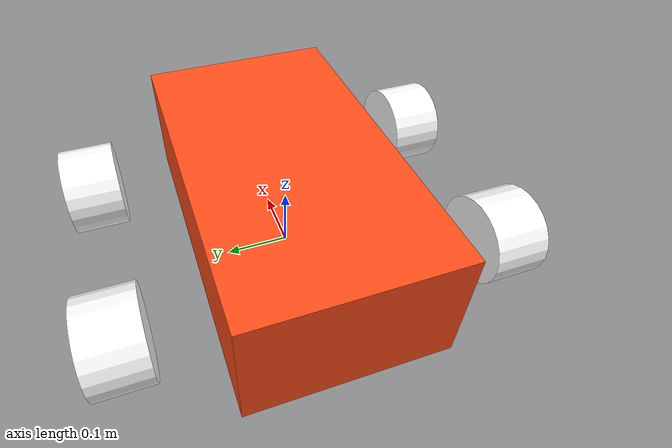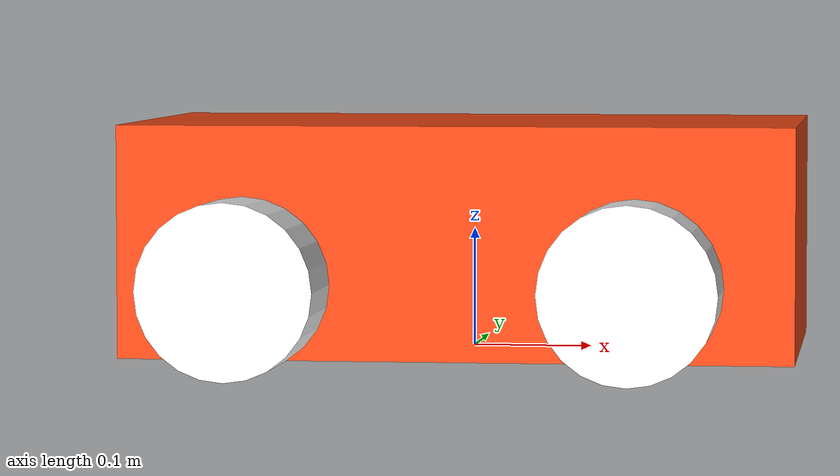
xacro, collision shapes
<?xml version="1.0"?>
<robot xmlns:xacro="http://www.ros.org/wiki/xacro" >

    <xacro:include filename="macros_inertial.xacro"/>
    <xacro:include filename="macros_material.xacro"/>

    <xacro:property name="wheelbase_length" value="0.313"/>
    <xacro:property name="wb_f_length" value="0.133"/>
    <xacro:property name="wb_r_length" value="0.112"/>

    <xacro:property name="chassis_length" value="${wheelbase_length + wb_r_length + wb_f_length}"/>
    <xacro:property name="chassis_width" value="0.313"/>
    <xacro:property name="chassis_height" value="${0.115+0.078}"/>

    <xacro:property name="track" value="0.666"/>

    <xacro:property name="chassis_mass" value="1.0"/>

    <xacro:property name="wheel_radius" value="0.07"/>
    <xacro:property name="wheel_thickness" value="0.085"/>
    <xacro:property name="wheel_mass" value="0.05"/>

    <xacro:property name="wheel_mass" value="0.05"/>

    <xacro:property name="wheel_offset_x" value="0.226"/>
    <xacro:property name="wheel_offset_y" value="0.1485"/>
    <xacro:property name="wheel_offset_z" value="0.01"/>

    <xacro:property name="caster_wheel_radius" value="0.01"/>
    <xacro:property name="caster_wheel_mass" value="0.01"/>
    <xacro:property name="caster_wheel_offset_x" value="0.075"/>
    <xacro:property name="caster_wheel_offset_z" value="${wheel_offset_z - wheel_radius + caster_wheel_radius}"/>
    <xacro:property name="chassis_mesh_file" value="file:$(cwd)/src/wheele_model/description/mesh/body_robot_2.dae"/>
    <xacro:property name="wheel_mesh_file" value="file:$(cwd)/src/wheele_model/description/mesh/Wheel.dae"/>

    <xacro:property name="lidar_x" value="${wheelbase_length/2 + 0.021 + 0.038/2}"/>
    <xacro:property name="lidar_y" value="${-chassis_width/2 + 0.03 + 0.038/2}"/>
    <xacro:property name="lidar_z" value="${chassis_height+0.02}"/>

    <xacro:property name="gps_x" value="${-wheelbase_length/2 - 0.035}"/>
    <xacro:property name="gps_y" value="${-chassis_width/2 + 0.05}"/>
    <xacro:property name="gps_z" value="${chassis_height+0.10}"/>

    <xacro:property name="imu_x" value="${wheelbase_length/2 -0.115}"/>
    <xacro:property name="imu_y" value="${0.0}"/>
    <xacro:property name="imu_z" value="${chassis_height+0.01}"/>

    <xacro:property name="camera_width" value="0.1"/>
    <xacro:property name="camera_height" value="0.065"/>
    <xacro:property name="camera_length" value="0.03"/>
    <xacro:property name="camera_mass" value="0.05"/>

    <xacro:property name="camera_x" value="${wheelbase_length/2 + 0.08 + camera_length/2}"/>
    <xacro:property name="camera_y" value="${-chassis_width/2 + 0.16}"/>
    <xacro:property name="camera_z" value="${0.078 + 0.06 + camera_height/2}"/>

    <xacro:property name="collision_x" value="${wheelbase_length/2 + 0.16}"/>
    <xacro:property name="collision_y" value="${0}"/>
    <xacro:property name="collision_z" value="${0.07}"/>

    <xacro:property name="lidarAS_width" value="0.076"/>
    <xacro:property name="lidarAS_height" value="0.220"/>
    <xacro:property name="lidarAS_length" value="0.032"/>
    <xacro:property name="lidarAS_mass" value="0.05"/>

    <xacro:property name="lidarAS_x" value="${-wheelbase_length/2 + lidarAS_length/2}"/>
    <xacro:property name="lidarAS_y" value="${chassis_width/2 - 0.04}"/>
    <xacro:property name="lidarAS_z" value="${lidarAS_height/2+chassis_height}"/>
    <!-- MACRO FOR THE WHEELS -->

    <xacro:macro name="wheel" params="prefix reflect_x reflect_y">

        <joint name="base_to_${prefix}_steering" type="continuous">
            <parent link="base_link"/>
            <child link="${prefix}_steering"/>
            <origin xyz="${reflect_x * wheelbase_length/2} ${reflect_y * (track - wheel_thickness)/2} 0" rpy="0 0 0"/>
            <axis xyz="0 0 1"/>
        </joint>

        <!-- fake link to simulate the steering-->
        <link name="${prefix}_steering">
            <inertial>
                <mass value="0.0005" />
                <inertia ixx="0.0000018" ixy="0.0" ixz="0.0"
                        iyy="0.0000018" iyz="0.0"
                        izz="0.0000018" />
            </inertial>
        </link>

        <joint name="steering_to_${prefix}_wheel" type="continuous">
            <parent link="${prefix}_steering"/>
            <child link="${prefix}_wheel"/>
            <origin xyz="0 0 ${wheel_radius}" rpy="0 0 0"/>
            <axis xyz="0 1 0"/>
        </joint>

        <link name="${prefix}_wheel">
            <visual>
                <geometry>
                    <mesh filename="${wheel_mesh_file}" scale="1 1 1" />
                </geometry>
                <origin xyz="0 0 0" rpy="0 0 ${pi/2 + reflect_y * pi/2}"/>
                <material name="white"/>
            </visual>
            <collision>
                <geometry>
                    <cylinder radius="${wheel_radius}" length="${wheel_thickness}"/>
                </geometry>
                <origin xyz="0 0 0" rpy="${pi/2} 0 0"/>
            </collision>
            <xacro:inertial_cylinder mass="${wheel_mass}" length="${wheel_thickness}" radius="${wheel_radius}">
                <origin xyz="0 0 0" rpy="0 0 0"/>
            </xacro:inertial_cylinder>
        </link>

        <gazebo reference="${prefix}_wheel">
            <material>Gazebo/Blue</material>
        </gazebo>
    </xacro:macro>

    <!-- BASE LINK -->
    <link name="base_footprint">
    </link>

    <!-- BASE_FOOTPRINT LINK -->

    <joint name="base_footprint_joint" type="fixed">
        <child link="base_footprint"/>
        <parent link="base_link"/>
        <origin xyz="0 0 0" rpy="0 0 0"/>
    </joint>

    <link name="base_link">

    </link>

    <!-- CHASSIS LINK -->

    <joint name="chassis_joint" type="fixed">
        <parent link="base_link"/>
        <child link="chassis"/>
        <origin xyz="0 0 0"/>
    </joint>

    <link name="chassis">
        <visual>
            <origin xyz="0 0 0" rpy="0 0 ${pi/2}"/>
            <geometry>
                <mesh filename="${chassis_mesh_file}" scale="1 1 1" />
            </geometry>
            <material name="orange"/>
        </visual>
        <collision>
            <origin xyz="0 0 ${chassis_height/2}"/>
            <geometry>
                <box size="${chassis_length} ${chassis_width} ${chassis_height}"/>
            </geometry>
        </collision>
        <xacro:inertial_box mass="0.5" x="${chassis_length}" y="${chassis_width}" z="${chassis_height}">
            <origin xyz="0 0 ${chassis_height/2}" rpy="0 0 0"/>
        </xacro:inertial_box>
    </link>

    <gazebo reference="chassis">
        <material>Gazebo/Orange</material>
    </gazebo>

    <xacro:wheel prefix="front_right" reflect_x="1" reflect_y="1" />
    <xacro:wheel prefix="front_left" reflect_x="1" reflect_y="-1" />
    <xacro:wheel prefix="rear_right" reflect_x="-1" reflect_y="1" />
    <xacro:wheel prefix="rear_left" reflect_x="-1" reflect_y="-1" />

    <!-- CASTER WHEEL LINK -->

</robot>

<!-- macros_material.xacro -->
<robot xmlns:xacro="http://www.ros.org/wiki/xacro" >
    <material name="white">
        <color rgba="1 1 1 1" />
    </material>

    <material name="orange">
        <color rgba="1 0.3 0.1 1"/>
    </material>

    <material name="blue">
        <color rgba="0.2 0.2 1 1"/>
    </material>

    <material name="black">
        <color rgba="0 0 0 1"/>
    </material>

    <material name="red">
        <color rgba="1 0 0 1"/>
    </material>
</robot>
